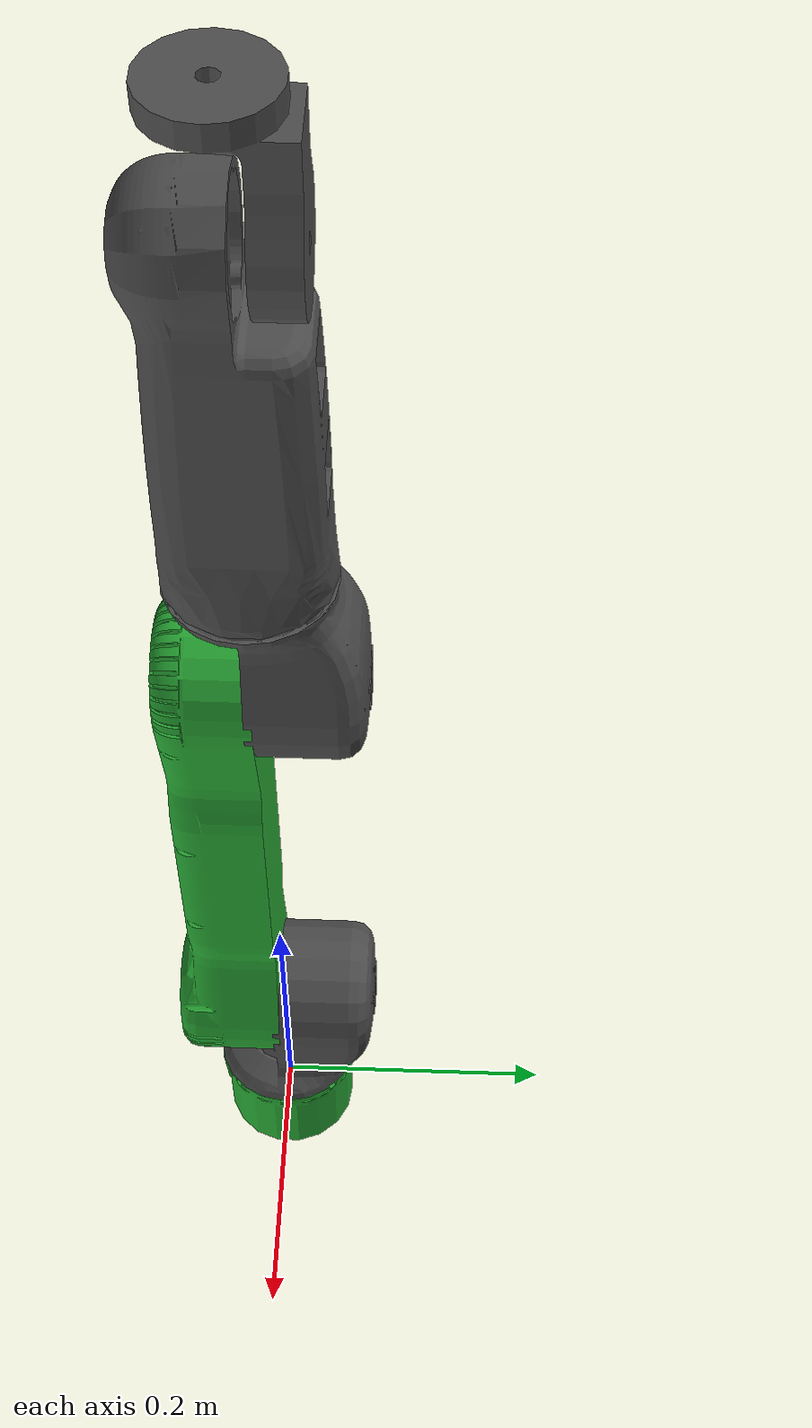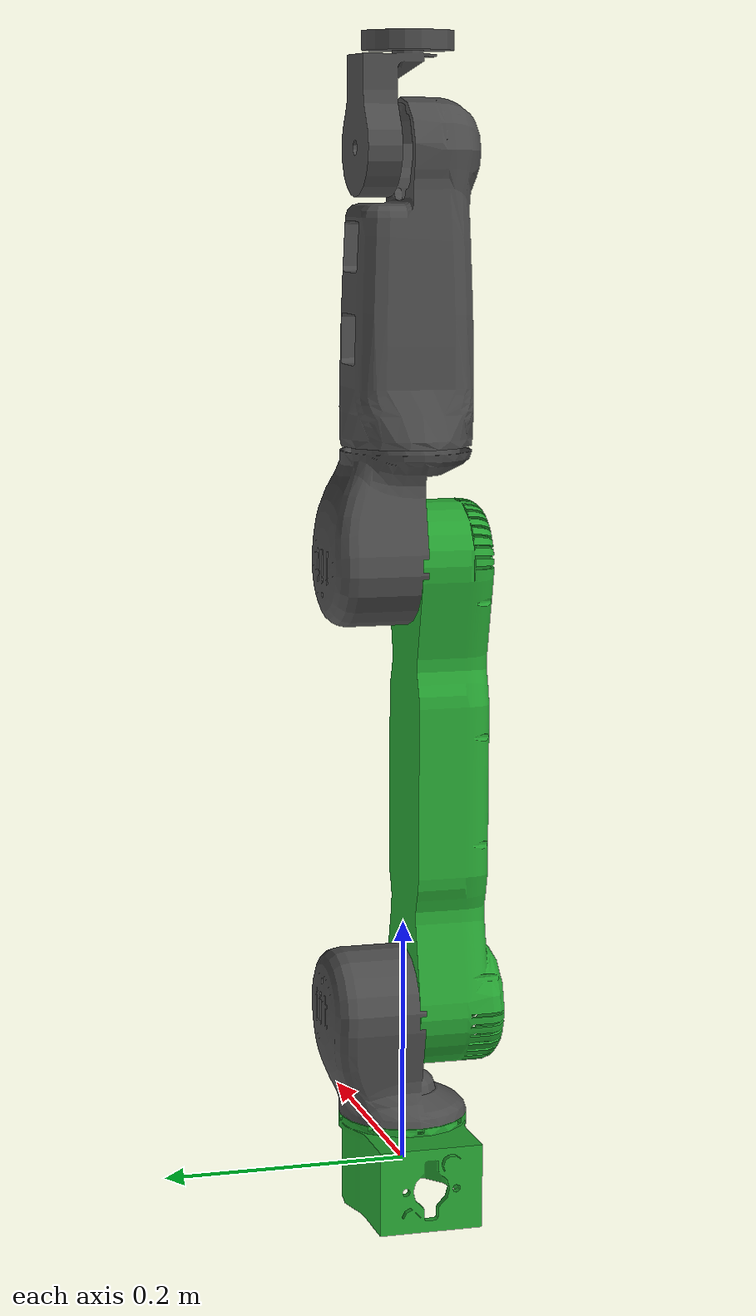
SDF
<sdf version='1.6'>
  <model name='teleop'>
    <link name='teleop_link0'>
      <pose frame=''>0 0 0 0 -0 0</pose>
      <inertial>
        <pose frame=''>0 0 0 0 -0 0</pose>
        <mass>1.5</mass>
        <inertia>
          <ixx>0.001</ixx>
          <ixy>0</ixy>
          <ixz>0</ixz>
          <iyy>0.001</iyy>
          <iyz>0</iyz>
          <izz>0.001</izz>
        </inertia>
      </inertial>
      <collision name='teleop_link0_collision'>
        <pose frame=''>0 0 0 1.5708 -0 0</pose>
        <geometry>
          <mesh>
            <scale>0.001 0.001 0.001</scale>
            <uri>model://teleop_urdf/meshes/simple/_teleop_link0.stl</uri>
          </mesh>
        </geometry>
        <surface>
          <contact>
            <ode/>
          </contact>
          <friction>
            <ode/>
          </friction>
        </surface>
      </collision>
      <visual name='teleop_link0_visual'>
        <pose frame=''>0 0 0 1.5708 -0 0</pose>
        <geometry>
          <mesh>
            <scale>0.001 0.001 0.001</scale>
            <uri>model://teleop_urdf/meshes/_teleop_link0.stl</uri>
          </mesh>
        </geometry>
        <material>
          <script>
            <name>Gazebo/Green</name>
            <uri>file://media/materials/scripts/gazebo.material</uri>
          </script>
        </material>
      </visual>
      <gravity>1</gravity>
      <velocity_decay/>
    </link>
    <link name='teleop_link1'>
      <pose frame=''>0 0 0 0 -0 0</pose>
      <inertial>
        <pose frame=''>0 -0.02 0.05 0 -0 0</pose>
        <mass>0.3</mass>
        <inertia>
          <ixx>0.001</ixx>
          <ixy>0</ixy>
          <ixz>0</ixz>
          <iyy>0.001</iyy>
          <iyz>0</iyz>
          <izz>0.0008</izz>
        </inertia>
      </inertial>
      <collision name='teleop_link1_collision'>
        <pose frame=''>0 0 0 1.5708 0 -1.5708</pose>
        <geometry>
          <mesh>
            <scale>0.001 0.001 0.001</scale>
            <uri>model://teleop_urdf/meshes/simple/_teleop_link1.stl</uri>
          </mesh>
        </geometry>
        <surface>
          <contact>
            <ode/>
          </contact>
          <friction>
            <ode/>
          </friction>
        </surface>
      </collision>
      <visual name='teleop_link1_visual'>
        <pose frame=''>0 0 0 1.5708 0 -1.5708</pose>
        <geometry>
          <mesh>
            <scale>0.001 0.001 0.001</scale>
            <uri>model://teleop_urdf/meshes/_teleop_link1.stl</uri>
          </mesh>
        </geometry>
        <material>
          <script>
            <name>Gazebo/DarkGrey</name>
            <uri>file://media/materials/scripts/gazebo.material</uri>
          </script>
        </material>
      </visual>
      <gravity>1</gravity>
      <velocity_decay/>
    </link>
    <joint name='joint1' type='revolute'>
      <child>teleop_link1</child>
      <parent>teleop_link0</parent>
      <axis>
        <xyz>0 0 1</xyz>
        <limit>
          <lower>-1.75</lower>
          <upper>1.75</upper>
          <effort>55</effort>
          <velocity>11.7</velocity>
        </limit>
        <dynamics>
          <damping>0.03</damping>
          <friction>0</friction>
          <spring_reference>0</spring_reference>
          <spring_stiffness>0</spring_stiffness>
        </dynamics>
        <use_parent_model_frame>1</use_parent_model_frame>
      </axis>
      <physics>
        <provide_feedback>1</provide_feedback>
        <ode>
          <provide_feedback>1</provide_feedback>
          <implicit_spring_damper>1</implicit_spring_damper>
          <cfm_damping>1</cfm_damping>
          <limit>
            <cfm>0</cfm>
            <erp>0.2</erp>
          </limit>
        </ode>
      </physics>
    </joint>
    <link name='teleop_link2'>
      <pose frame=''>0 0 0.1315 0 -0 0</pose>
      <inertial>
        <pose frame=''>0 0.01 0.18 0 -0 0</pose>
        <mass>3.3</mass>
        <inertia>
          <ixx>0.04</ixx>
          <ixy>0</ixy>
          <ixz>0</ixz>
          <iyy>0.04</iyy>
          <iyz>0</iyz>
          <izz>0.01</izz>
        </inertia>
      </inertial>
      <collision name='teleop_link2_collision'>
        <pose frame=''>0 0 0 1.5708 -0 0</pose>
        <geometry>
          <mesh>
            <scale>0.001 0.001 0.001</scale>
            <uri>model://teleop_urdf/meshes/simple/_teleop_link2.stl</uri>
          </mesh>
        </geometry>
        <surface>
          <contact>
            <ode/>
          </contact>
          <friction>
            <ode/>
          </friction>
        </surface>
      </collision>
      <visual name='teleop_link2_visual'>
        <pose frame=''>0 0 0 1.5708 -0 0</pose>
        <geometry>
          <mesh>
            <scale>0.001 0.001 0.001</scale>
            <uri>model://teleop_urdf/meshes/_teleop_link2.stl</uri>
          </mesh>
        </geometry>
        <material>
          <script>
            <name>Gazebo/Green</name>
            <uri>file://media/materials/scripts/gazebo.material</uri>
          </script>
        </material>
      </visual>
      <gravity>1</gravity>
      <velocity_decay/>
    </link>
    <joint name='joint2' type='revolute'>
      <child>teleop_link2</child>
      <parent>teleop_link1</parent>
      <axis>
        <xyz>0 1 0</xyz>
        <limit>
          <lower>-2.15</lower>
          <upper>2.15</upper>
          <effort>147</effort>
          <velocity>5.2</velocity>
        </limit>
        <dynamics>
          <damping>0.03</damping>
          <friction>0</friction>
          <spring_reference>0</spring_reference>
          <spring_stiffness>0</spring_stiffness>
        </dynamics>
        <use_parent_model_frame>1</use_parent_model_frame>
      </axis>
      <physics>
        <provide_feedback>1</provide_feedback>
        <ode>
          <provide_feedback>1</provide_feedback>
          <implicit_spring_damper>1</implicit_spring_damper>
          <cfm_damping>1</cfm_damping>
          <limit>
            <cfm>0</cfm>
            <erp>0.2</erp>
          </limit>
        </ode>
      </physics>
    </joint>
    <link name='teleop_link3'>
      <pose frame=''>0 0 0.4965 0 -0 0</pose>
      <inertial>
        <pose frame=''>0 -0.02 0.05 0 -0 0</pose>
        <mass>0.3</mass>
        <inertia>
          <ixx>0.001</ixx>
          <ixy>0</ixy>
          <ixz>0</ixz>
          <iyy>0.001</iyy>
          <iyz>0</iyz>
          <izz>0.0008</izz>
        </inertia>
      </inertial>
      <collision name='teleop_link3_collision'>
        <pose frame=''>0 0 0 1.5708 -0 0</pose>
        <geometry>
          <mesh>
            <scale>0.001 0.001 0.001</scale>
            <uri>model://teleop_urdf/meshes/simple/_teleop_link3.stl</uri>
          </mesh>
        </geometry>
        <surface>
          <contact>
            <ode/>
          </contact>
          <friction>
            <ode/>
          </friction>
        </surface>
      </collision>
      <visual name='teleop_link3_visual'>
        <pose frame=''>0 0 0 1.5708 -0 0</pose>
        <geometry>
          <mesh>
            <scale>0.001 0.001 0.001</scale>
            <uri>model://teleop_urdf/meshes/_teleop_link3.stl</uri>
          </mesh>
        </geometry>
        <material>
          <script>
            <name>Gazebo/DarkGrey</name>
            <uri>file://media/materials/scripts/gazebo.material</uri>
          </script>
        </material>
      </visual>
      <gravity>1</gravity>
      <velocity_decay/>
    </link>
    <joint name='joint3' type='revolute'>
      <child>teleop_link3</child>
      <parent>teleop_link2</parent>
      <axis>
        <xyz>0 1 0</xyz>
        <limit>
          <lower>-2.15</lower>
          <upper>2.15</upper>
          <effort>127</effort>
          <velocity>8.1</velocity>
        </limit>
        <dynamics>
          <damping>0.03</damping>
          <friction>0</friction>
          <spring_reference>0</spring_reference>
          <spring_stiffness>0</spring_stiffness>
        </dynamics>
        <use_parent_model_frame>1</use_parent_model_frame>
      </axis>
      <physics>
        <provide_feedback>1</provide_feedback>
        <ode>
          <provide_feedback>1</provide_feedback>
          <implicit_spring_damper>1</implicit_spring_damper>
          <cfm_damping>1</cfm_damping>
          <limit>
            <cfm>0</cfm>
            <erp>0.2</erp>
          </limit>
        </ode>
      </physics>
    </joint>
    <link name='teleop_link4'>
      <pose frame=''>0 0 0.5965 0 -0 0</pose>
      <inertial>
        <pose frame=''>0 0 0.1 0 -0 0</pose>
        <mass>2.5</mass>
        <inertia>
          <ixx>0.015</ixx>
          <ixy>0</ixy>
          <ixz>0</ixz>
          <iyy>0.015</iyy>
          <iyz>0</iyz>
          <izz>0.008</izz>
        </inertia>
      </inertial>
      <collision name='teleop_link4_collision'>
        <pose frame=''>0 0 0 1.5708 -0 0</pose>
        <geometry>
          <mesh>
            <scale>0.001 0.001 0.001</scale>
            <uri>model://teleop_urdf/meshes/simple/_teleop_link4.stl</uri>
          </mesh>
        </geometry>
        <surface>
          <contact>
            <ode/>
          </contact>
          <friction>
            <ode/>
          </friction>
        </surface>
      </collision>
      <visual name='teleop_link4_visual'>
        <pose frame=''>0 0 0 1.5708 -0 0</pose>
        <geometry>
          <mesh>
            <scale>0.001 0.001 0.001</scale>
            <uri>model://teleop_urdf/meshes/_teleop_link4.stl</uri>
          </mesh>
        </geometry>
        <material>
          <script>
            <name>Gazebo/DarkGrey</name>
            <uri>file://media/materials/scripts/gazebo.material</uri>
          </script>
        </material>
      </visual>
      <gravity>1</gravity>
      <velocity_decay/>
    </link>
    <joint name='joint4' type='revolute'>
      <child>teleop_link4</child>
      <parent>teleop_link3</parent>
      <axis>
        <xyz>0 0 1</xyz>
        <limit>
          <lower>-2.79</lower>
          <upper>2.79</upper>
          <effort>28</effort>
          <velocity>20.4</velocity>
        </limit>
        <dynamics>
          <damping>0.03</damping>
          <friction>0</friction>
          <spring_reference>0</spring_reference>
          <spring_stiffness>0</spring_stiffness>
        </dynamics>
        <use_parent_model_frame>1</use_parent_model_frame>
      </axis>
      <physics>
        <provide_feedback>1</provide_feedback>
        <ode>
          <provide_feedback>1</provide_feedback>
          <implicit_spring_damper>1</implicit_spring_damper>
          <cfm_damping>1</cfm_damping>
          <limit>
            <cfm>0</cfm>
            <erp>0.2</erp>
          </limit>
        </ode>
      </physics>
    </joint>
    <link name='teleop_link5'>
      <pose frame=''>0 0 0.8225 0 -0 0</pose>
      <inertial>
        <pose frame=''>0 0 0.1 0 -0 0</pose>
        <mass>2</mass>
        <inertia>
          <ixx>0.01</ixx>
          <ixy>0</ixy>
          <ixz>0</ixz>
          <iyy>0.01</iyy>
          <iyz>0</iyz>
          <izz>0.01</izz>
        </inertia>
      </inertial>
      <collision name='teleop_link5_collision'>
        <pose frame=''>0 0 0 1.5708 -0 -3.14159</pose>
        <geometry>
          <mesh>
            <scale>0.001 0.001 0.001</scale>
            <uri>model://teleop_urdf/meshes/simple/_teleop_link5.stl</uri>
          </mesh>
        </geometry>
        <surface>
          <contact>
            <ode/>
          </contact>
          <friction>
            <ode/>
          </friction>
        </surface>
      </collision>
      <visual name='teleop_link5_visual'>
        <pose frame=''>0 0 0 1.5708 -0 -3.14159</pose>
        <geometry>
          <mesh>
            <scale>0.001 0.001 0.001</scale>
            <uri>model://teleop_urdf/meshes/_teleop_link5.stl</uri>
          </mesh>
        </geometry>
        <material>
          <script>
            <name>Gazebo/DarkGrey</name>
            <uri>file://media/materials/scripts/gazebo.material</uri>
          </script>
        </material>
      </visual>
      <gravity>1</gravity>
      <velocity_decay/>
    </link>
    <joint name='joint5' type='revolute'>
      <child>teleop_link5</child>
      <parent>teleop_link4</parent>
      <axis>
        <xyz>0 1 0</xyz>
        <limit>
          <lower>-1.83</lower>
          <upper>1.83</upper>
          <effort>28</effort>
          <velocity>20.4</velocity>
        </limit>
        <dynamics>
          <damping>0.03</damping>
          <friction>0</friction>
          <spring_reference>0</spring_reference>
          <spring_stiffness>0</spring_stiffness>
        </dynamics>
        <use_parent_model_frame>1</use_parent_model_frame>
      </axis>
      <physics>
        <provide_feedback>1</provide_feedback>
        <ode>
          <provide_feedback>1</provide_feedback>
          <implicit_spring_damper>1</implicit_spring_damper>
          <cfm_damping>1</cfm_damping>
          <limit>
            <cfm>0</cfm>
            <erp>0.2</erp>
          </limit>
        </ode>
      </physics>
    </joint>
    <static>0</static>
    <plugin name='xbot_plugin_handler' filename='libGazeboXBotPlugin.so'/>
  </model>
</sdf>
